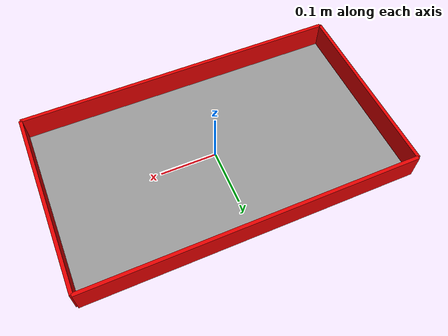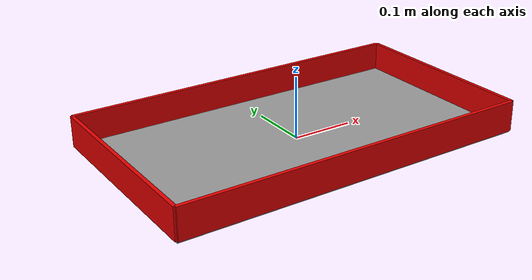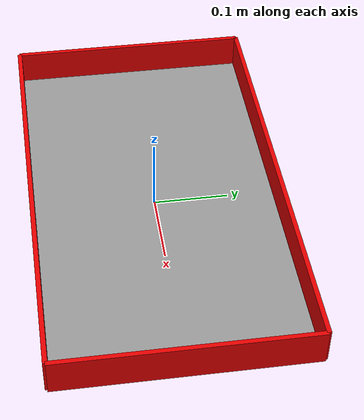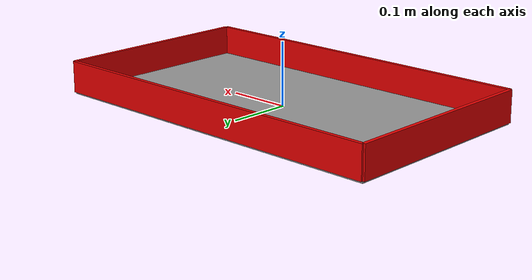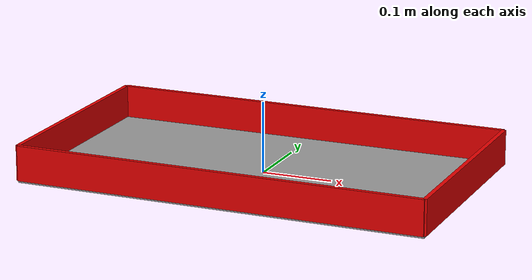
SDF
<?xml version="1.0" ?>
<sdf version="1.5">
  <model name="grey_tote">
    <static>true</static>
    <link name="link">
      <inertial>
        <pose>0 0 0.141549545 0 0 0</pose>
        <mass>3.53802</mass>
        <inertia>
          <ixx>0.068835836</ixx>
          <ixy>0</ixy>
          <ixz>0</ixz>
          <iyy>0.139596236</iyy>
          <iyz>0</iyz>
          <izz>0.155908748</izz>
        </inertia>
      </inertial>

      <collision name="side_wall_1">
        <pose>0 -0.16523 0.025 0 0 0</pose>
        <geometry>
          <box>
            <size>0.58404 0.02602 0.05</size>
          </box>
        </geometry>
      </collision>

      <collision name="side_wall_2">
        <pose>0 0.16523 0.025 0 0 0</pose>
        <geometry>
          <box>
            <size>0.58404 0.02602 0.05</size>
          </box>
        </geometry>
      </collision>

      <collision name="side_wall_3">
        <pose>0.29202 0 0.025 0 0 0</pose>
        <geometry>
          <box>
            <size>0.02602 0.33046 0.05</size>
          </box>
        </geometry>
      </collision>

      <collision name="side_wall_4">
        <pose>-0.29202 0 0.025 0 0 0</pose>
        <geometry>
          <box>
            <size>0.02602 0.33046 0.05</size>
          </box>
        </geometry>
      </collision>

      <collision name="bottom">
        <pose>0 0 0.0 0 0 0</pose>
        <geometry>
          <box>
            <size>0.58404 0.33046 0.006</size>
          </box>
        </geometry>
      </collision>

      <visual name="side_wall_1">
        <pose>0 -0.16523 0.025 0 0 0</pose>
        <geometry>
          <box>
            <size>0.58404 0.00602 0.05</size>
          </box>
        </geometry>
        <material>
          <ambient>0.6 0.6 0.6 1</ambient>
          <diffuse>0.9 0.0 0.0 1</diffuse>
          <specular>0.1 0.1 0.1 1</specular>
          <emissive>0 0 0 0</emissive>
        </material>
      </visual>

      <visual name="side_wall_2">
        <pose>0 0.16523 0.025 0 0 0</pose>
        <geometry>
          <box>
            <size>0.58404 0.00602 0.05</size>
          </box>
        </geometry>
        <material>
          <ambient>0.6 0.6 0.6 1</ambient>
          <diffuse>0.9 0.0 0.0 1</diffuse>
          <specular>0.1 0.1 0.1 1</specular>
          <emissive>0 0 0 0</emissive>
        </material>
      </visual>

      <visual name="side_wall_3">
        <pose>0.29202 0 0.025 0 0 0</pose>
        <geometry>
          <box>
            <size>0.00602 0.33046 0.05</size>
          </box>
        </geometry>
        <material>
          <ambient>0.6 0.6 0.6 1</ambient>
          <diffuse>0.9 0.0 0.0 1</diffuse>
          <specular>0.1 0.1 0.1 1</specular>
          <emissive>0 0 0 0</emissive>
        </material>
      </visual>

      <visual name="side_wall_4">
        <pose>-0.29202 0 0.025 0 0 0</pose>
        <geometry>
          <box>
            <size>0.00602 0.33046 0.05</size>
          </box>
        </geometry>
        <material>
          <ambient>0.6 0.6 0.6 1</ambient>
          <diffuse>0.9 0.0 0.0 1</diffuse>
          <specular>0.1 0.1 0.1 1</specular>
          <emissive>0 0 0 0</emissive>
        </material>
      </visual>

      <visual name="bottom">
        <pose>0 0 0.0 0 0 0</pose>
        <geometry>
          <box>
            <size>0.58404 0.33046 0.006</size>
          </box>
        </geometry>
        <material>
          <ambient>0.6 0.6 0.6 1</ambient>
          <diffuse>0.6 0.6 0.6 1</diffuse>
          <specular>0.1 0.1 0.1 1</specular>
          <emissive>0 0 0 0</emissive>
        </material>
      </visual>

    </link>
  </model>
</sdf>
